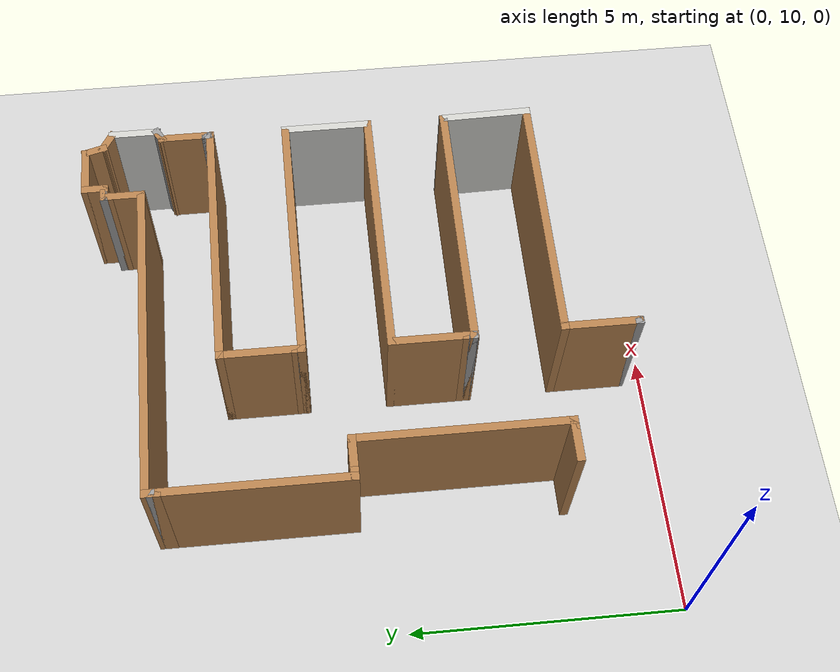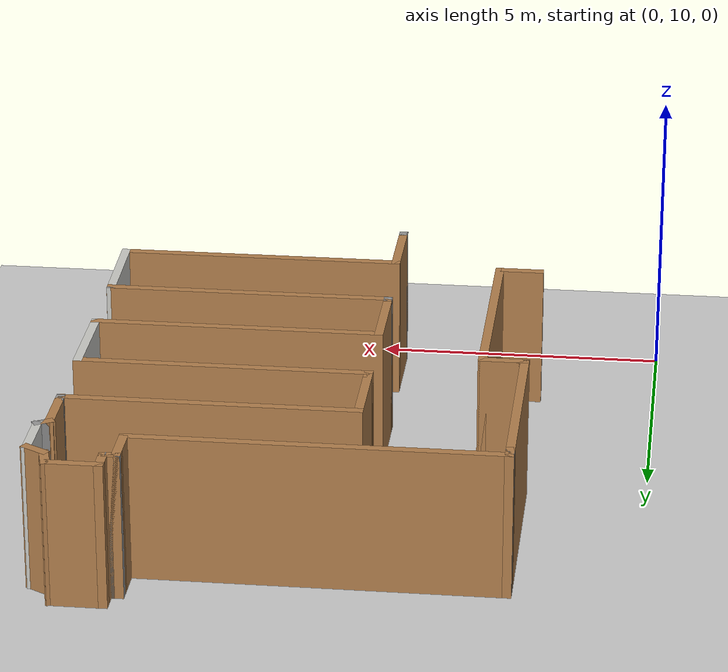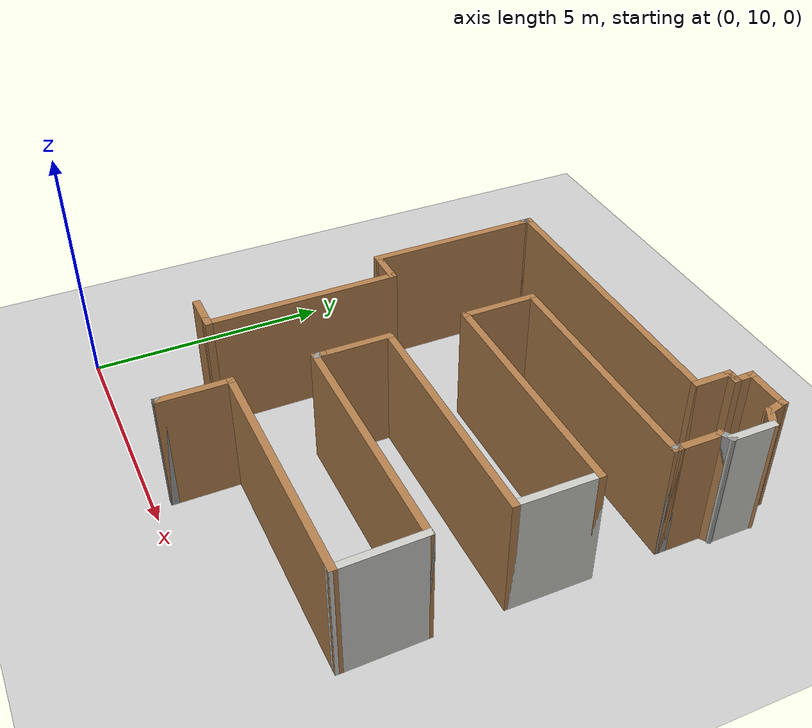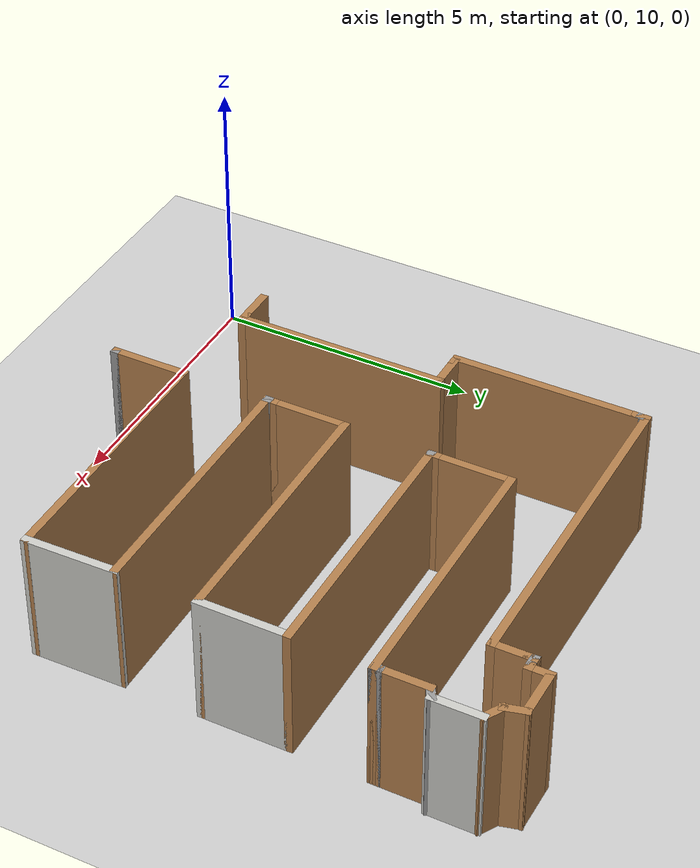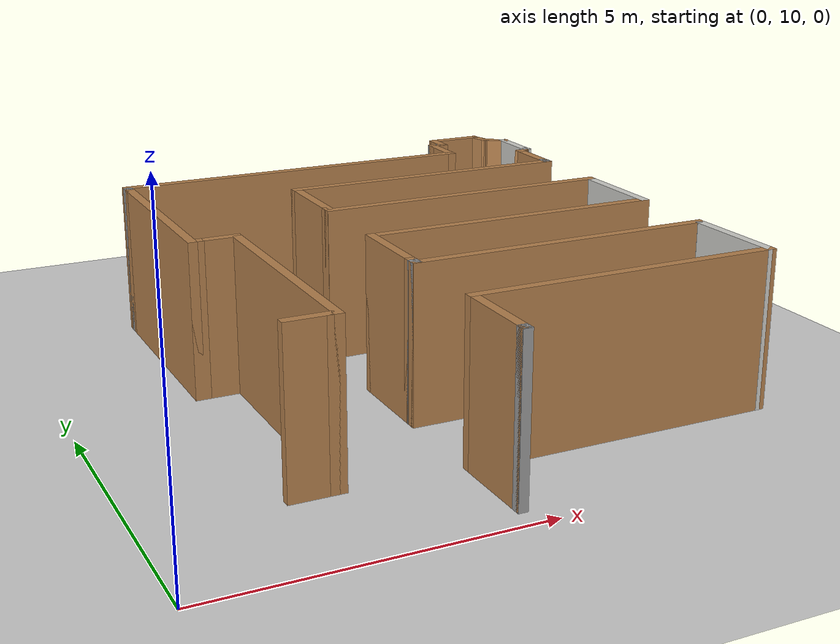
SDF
<sdf version="1.6">
 <world name="default">
  <model name="ground_plane">
   <static>1</static>
   <link name="link">
    <collision name="collision">
     <geometry><plane><normal>0 0 1</normal><size>100 100</size></plane></geometry>
     <surface>
      <contact><collide_bitmask>65535</collide_bitmask></contact>
      <friction><ode><mu>100</mu><mu2>50</mu2></ode></friction>
     </surface>
    </collision>
    <visual name="visual">
     <cast_shadows>0</cast_shadows>
     <geometry><plane><normal>0 0 1</normal><size>100 100</size></plane></geometry>
     <material>
      <script><uri>file://media/materials/scripts/gazebo.material</uri><name>Gazebo/Grey</name></script>
     </material>
    </visual>
   </link>
  </model>
  <model name="ecst_lab_v2">
   <pose>2.38151 7.60504 0 0 0 -1.5708</pose>
   <link name="Wall_1">
    <collision name="Wall_1_Collision">
     <geometry><box><size>5 0.15 2.5</size></box></geometry>
     <pose>0 0 1.25 0 -0 0</pose>
    </collision>
    <visual name="Wall_1_Visual">
     <pose>0 0 1.25 0 -0 0</pose>
     <geometry><box><size>5 0.15 2.5</size></box></geometry>
     <material>
      <script><uri>file://media/materials/scripts/gazebo.material</uri><name>Gazebo/Wood</name></script>
      <ambient>1 1 1 1</ambient>
     </material>
     <meta><layer>0</layer></meta>
    </visual>
    <pose>-4.16301 4.67727 0 0 -0 -1.5708</pose>
   </link>
   <link name="Wall_100">
    <collision name="Wall_100_Collision">
     <geometry><box><size>1 0.15 2.5</size></box></geometry>
     <pose>0 0 1.25 0 -0 0</pose>
    </collision>
    <visual name="Wall_100_Visual">
     <pose>0 0 1.25 0 -0 0</pose>
     <geometry><box><size>1 0.15 2.5</size></box></geometry>
     <material>
      <script><uri>file://media/materials/scripts/gazebo.material</uri><name>Gazebo/Wood</name></script>
      <ambient>1 1 1 1</ambient>
     </material>
     <meta><layer>0</layer></meta>
    </visual>
    <pose>-10.8485 7.06822 0 0 -0 0</pose>
   </link>
   <link name="Wall_101">
    <collision name="Wall_101_Collision">
     <geometry><box><size>0.15 0.15 2.5</size></box></geometry>
     <pose>0 0 1.25 0 -0 0</pose>
    </collision>
    <visual name="Wall_101_Visual">
     <pose>0 0 1.25 0 -0 0</pose>
     <geometry><box><size>0.15 0.15 2.5</size></box></geometry>
     <material>
      <script><uri>file://media/materials/scripts/gazebo.material</uri><name>Gazebo/Grey</name></script>
      <ambient>1 1 1 1</ambient>
     </material>
     <meta><layer>0</layer></meta>
    </visual>
    <pose>-10.4235 7.06822 0 0 -0 0</pose>
   </link>
   <link name="Wall_102">
    <collision name="Wall_102_Collision">
     <geometry><box><size>0.16 0.15 2.5</size></box></geometry>
     <pose>0 0 1.25 0 -0 0</pose>
    </collision>
    <visual name="Wall_102_Visual">
     <pose>0 0 1.25 0 -0 0</pose>
     <geometry><box><size>0.16 0.15 2.5</size></box></geometry>
     <material>
      <script><uri>file://media/materials/scripts/gazebo.material</uri><name>Gazebo/Grey</name></script>
      <ambient>1 1 1 1</ambient>
     </material>
     <meta><layer>0</layer></meta>
    </visual>
    <pose>-10.4185 7.06822 0 0 -0 0</pose>
   </link>
   <link name="Wall_103">
    <collision name="Wall_103_Collision">
     <geometry><box><size>0.16 0.15 2.5</size></box></geometry>
     <pose>0 0 1.25 0 -0 0</pose>
    </collision>
    <visual name="Wall_103_Visual">
     <pose>0 0 1.25 0 -0 0</pose>
     <geometry><box><size>0.16 0.15 2.5</size></box></geometry>
     <material>
      <script><uri>file://media/materials/scripts/gazebo.material</uri><name>Gazebo/Grey</name></script>
      <ambient>1 1 1 1</ambient>
     </material>
     <meta><layer>0</layer></meta>
    </visual>
    <pose>-10.4085 7.06822 0 0 -0 0</pose>
   </link>
   <link name="Wall_104">
    <collision name="Wall_104_Collision">
     <geometry><box><size>0.16 0.15 2.5</size></box></geometry>
     <pose>0 0 1.25 0 -0 0</pose>
    </collision>
    <visual name="Wall_104_Visual">
     <pose>0 0 1.25 0 -0 0</pose>
     <geometry><box><size>0.16 0.15 2.5</size></box></geometry>
     <material>
      <script><uri>file://media/materials/scripts/gazebo.material</uri><name>Gazebo/Wood</name></script>
      <ambient>1 1 1 1</ambient>
     </material>
     <meta><layer>0</layer></meta>
    </visual>
    <pose>-10.3985 7.06822 0 0 -0 0</pose>
   </link>
   <link name="Wall_105">
    <collision name="Wall_105_Collision">
     <geometry><box><size>0.16 0.15 2.5</size></box></geometry>
     <pose>0 0 1.25 0 -0 0</pose>
    </collision>
    <visual name="Wall_105_Visual">
     <pose>0 0 1.25 0 -0 0</pose>
     <geometry><box><size>0.16 0.15 2.5</size></box></geometry>
     <material>
      <script><uri>file://media/materials/scripts/gazebo.material</uri><name>Gazebo/Grey</name></script>
      <ambient>1 1 1 1</ambient>
     </material>
     <meta><layer>0</layer></meta>
    </visual>
    <pose>-10.3885 7.06822 0 0 -0 0</pose>
   </link>
   <link name="Wall_106">
    <collision name="Wall_106_Collision">
     <geometry><box><size>0.16 0.15 2.5</size></box></geometry>
     <pose>0 0 1.25 0 -0 0</pose>
    </collision>
    <visual name="Wall_106_Visual">
     <pose>0 0 1.25 0 -0 0</pose>
     <geometry><box><size>0.16 0.15 2.5</size></box></geometry>
     <material>
      <script><uri>file://media/materials/scripts/gazebo.material</uri><name>Gazebo/Wood</name></script>
      <ambient>1 1 1 1</ambient>
     </material>
     <meta><layer>0</layer></meta>
    </visual>
    <pose>-10.3785 7.06822 0 0 -0 0</pose>
   </link>
   <link name="Wall_107">
    <collision name="Wall_107_Collision">
     <geometry><box><size>0.16 0.15 2.5</size></box></geometry>
     <pose>0 0 1.25 0 -0 0</pose>
    </collision>
    <visual name="Wall_107_Visual">
     <pose>0 0 1.25 0 -0 0</pose>
     <geometry><box><size>0.16 0.15 2.5</size></box></geometry>
     <material>
      <script><uri>file://media/materials/scripts/gazebo.material</uri><name>Gazebo/Grey</name></script>
      <ambient>1 1 1 1</ambient>
     </material>
     <meta><layer>0</layer></meta>
    </visual>
    <pose>-10.3685 7.06822 0 0 -0 0</pose>
   </link>
   <link name="Wall_108">
    <collision name="Wall_108_Collision">
     <geometry><box><size>0.16 0.15 2.5</size></box></geometry>
     <pose>0 0 1.25 0 -0 0</pose>
    </collision>
    <visual name="Wall_108_Visual">
     <pose>0 0 1.25 0 -0 0</pose>
     <geometry><box><size>0.16 0.15 2.5</size></box></geometry>
     <material>
      <script><uri>file://media/materials/scripts/gazebo.material</uri><name>Gazebo/Grey</name></script>
      <ambient>1 1 1 1</ambient>
     </material>
     <meta><layer>0</layer></meta>
    </visual>
    <pose>-10.3685 7.06822 0 0 -0 3.14159</pose>
   </link>
   <link name="Wall_109">
    <collision name="Wall_109_Collision">
     <geometry><box><size>0.16 0.15 2.5</size></box></geometry>
     <pose>0 0 1.25 0 -0 0</pose>
    </collision>
    <visual name="Wall_109_Visual">
     <pose>0 0 1.25 0 -0 0</pose>
     <geometry><box><size>0.16 0.15 2.5</size></box></geometry>
     <material>
      <script><uri>file://media/materials/scripts/gazebo.material</uri><name>Gazebo/Grey</name></script>
      <ambient>1 1 1 1</ambient>
     </material>
     <meta><layer>0</layer></meta>
    </visual>
    <pose>-10.3685 7.06822 0 0 -0 0</pose>
   </link>
   <link name="Wall_110">
    <collision name="Wall_110_Collision">
     <geometry><box><size>0.16 0.15 2.5</size></box></geometry>
     <pose>0 0 1.25 0 -0 0</pose>
    </collision>
    <visual name="Wall_110_Visual">
     <pose>0 0 1.25 0 -0 0</pose>
     <geometry><box><size>0.16 0.15 2.5</size></box></geometry>
     <material>
      <script><uri>file://media/materials/scripts/gazebo.material</uri><name>Gazebo/Grey</name></script>
      <ambient>1 1 1 1</ambient>
     </material>
     <meta><layer>0</layer></meta>
    </visual>
    <pose>-10.3685 7.06822 0 0 -0 3.14159</pose>
   </link>
   <link name="Wall_111">
    <collision name="Wall_111_Collision">
     <geometry><box><size>0.16 0.15 2.5</size></box></geometry>
     <pose>0 0 1.25 0 -0 0</pose>
    </collision>
    <visual name="Wall_111_Visual">
     <pose>0 0 1.25 0 -0 0</pose>
     <geometry><box><size>0.16 0.15 2.5</size></box></geometry>
     <material>
      <script><uri>file://media/materials/scripts/gazebo.material</uri><name>Gazebo/Grey</name></script>
      <ambient>1 1 1 1</ambient>
     </material>
     <meta><layer>0</layer></meta>
    </visual>
    <pose>-10.3685 7.06822 0 0 -0 0</pose>
   </link>
   <link name="Wall_112">
    <collision name="Wall_112_Collision">
     <geometry><box><size>0.16 0.15 2.5</size></box></geometry>
     <pose>0 0 1.25 0 -0 0</pose>
    </collision>
    <visual name="Wall_112_Visual">
     <pose>0 0 1.25 0 -0 0</pose>
     <geometry><box><size>0.16 0.15 2.5</size></box></geometry>
     <material>
      <script><uri>file://media/materials/scripts/gazebo.material</uri><name>Gazebo/Grey</name></script>
      <ambient>1 1 1 1</ambient>
     </material>
     <meta><layer>0</layer></meta>
    </visual>
    <pose>-10.3685 7.06822 0 0 -0 3.14159</pose>
   </link>
   <link name="Wall_113">
    <collision name="Wall_113_Collision">
     <geometry><box><size>0.16 0.15 2.5</size></box></geometry>
     <pose>0 0 1.25 0 -0 0</pose>
    </collision>
    <visual name="Wall_113_Visual">
     <pose>0 0 1.25 0 -0 0</pose>
     <geometry><box><size>0.16 0.15 2.5</size></box></geometry>
     <material>
      <script><uri>file://media/materials/scripts/gazebo.material</uri><name>Gazebo/Grey</name></script>
      <ambient>1 1 1 1</ambient>
     </material>
     <meta><layer>0</layer></meta>
    </visual>
    <pose>-10.3685 7.06822 0 0 -0 0</pose>
   </link>
   <link name="Wall_114">
    <collision name="Wall_114_Collision">
     <geometry><box><size>0.16 0.15 2.5</size></box></geometry>
     <pose>0 0 1.25 0 -0 0</pose>
    </collision>
    <visual name="Wall_114_Visual">
     <pose>0 0 1.25 0 -0 0</pose>
     <geometry><box><size>0.16 0.15 2.5</size></box></geometry>
     <material>
      <script><uri>file://media/materials/scripts/gazebo.material</uri><name>Gazebo/Grey</name></script>
      <ambient>1 1 1 1</ambient>
     </material>
     <meta><layer>0</layer></meta>
    </visual>
    <pose>-10.3685 7.06822 0 0 -0 3.14159</pose>
   </link>
   <link name="Wall_115">
    <collision name="Wall_115_Collision">
     <geometry><box><size>0.16 0.15 2.5</size></box></geometry>
     <pose>0 0 1.25 0 -0 0</pose>
    </collision>
    <visual name="Wall_115_Visual">
     <pose>0 0 1.25 0 -0 0</pose>
     <geometry><box><size>0.16 0.15 2.5</size></box></geometry>
     <material>
      <script><uri>file://media/materials/scripts/gazebo.material</uri><name>Gazebo/Wood</name></script>
      <ambient>1 1 1 1</ambient>
     </material>
     <meta><layer>0</layer></meta>
    </visual>
    <pose>-10.3685 7.06822 0 0 -0 0</pose>
   </link>
   <link name="Wall_116">
    <collision name="Wall_116_Collision">
     <geometry><box><size>0.16 0.15 2.5</size></box></geometry>
     <pose>0 0 1.25 0 -0 0</pose>
    </collision>
    <visual name="Wall_116_Visual">
     <pose>0 0 1.25 0 -0 0</pose>
     <geometry><box><size>0.16 0.15 2.5</size></box></geometry>
     <material>
      <script><uri>file://media/materials/scripts/gazebo.material</uri><name>Gazebo/Grey</name></script>
      <ambient>1 1 1 1</ambient>
     </material>
     <meta><layer>0</layer></meta>
    </visual>
    <pose>-10.3585 7.06822 0 0 -0 0</pose>
   </link>
   <link name="Wall_117">
    <collision name="Wall_117_Collision">
     <geometry><box><size>0.16 0.15 2.5</size></box></geometry>
     <pose>0 0 1.25 0 -0 0</pose>
    </collision>
    <visual name="Wall_117_Visual">
     <pose>0 0 1.25 0 -0 0</pose>
     <geometry><box><size>0.16 0.15 2.5</size></box></geometry>
     <material>
      <script><uri>file://media/materials/scripts/gazebo.material</uri><name>Gazebo/Wood</name></script>
      <ambient>1 1 1 1</ambient>
     </material>
     <meta><layer>0</layer></meta>
    </visual>
    <pose>-10.3485 7.06822 0 0 -0 0</pose>
   </link>
   <link name="Wall_118">
    <collision name="Wall_118_Collision">
     <geometry><box><size>5 0.15 2.5</size></box></geometry>
     <pose>0 0 1.25 0 -0 0</pose>
    </collision>
    <visual name="Wall_118_Visual">
     <pose>0 0 1.25 0 -0 0</pose>
     <geometry><box><size>5 0.15 2.5</size></box></geometry>
     <material>
      <script><uri>file://media/materials/scripts/gazebo.material</uri><name>Gazebo/Wood</name></script>
      <ambient>1 1 1 1</ambient>
     </material>
     <meta><layer>0</layer></meta>
    </visual>
    <pose>-10.3435 4.64322 0 0 -0 -1.5708</pose>
   </link>
   <link name="Wall_119">
    <collision name="Wall_119_Collision">
     <geometry><box><size>1.5 0.15 2.5</size></box></geometry>
     <pose>0 0 1.25 0 -0 0</pose>
    </collision>
    <visual name="Wall_119_Visual">
     <pose>0 0 1.25 0 -0 0</pose>
     <geometry><box><size>1.5 0.15 2.5</size></box></geometry>
     <material>
      <script><uri>file://media/materials/scripts/gazebo.material</uri><name>Gazebo/Wood</name></script>
      <ambient>1 1 1 1</ambient>
     </material>
     <meta><layer>0</layer></meta>
    </visual>
    <pose>-9.6685 2.21822 0 0 -0 0</pose>
   </link>
   <link name="Wall_120">
    <collision name="Wall_120_Collision">
     <geometry><box><size>0.25 0.15 2.5</size></box></geometry>
     <pose>0 0 1.25 0 -0 0</pose>
    </collision>
    <visual name="Wall_120_Visual">
     <pose>0 0 1.25 0 -0 0</pose>
     <geometry><box><size>0.25 0.15 2.5</size></box></geometry>
     <material>
      <script><uri>file://media/materials/scripts/gazebo.material</uri><name>Gazebo/Wood</name></script>
      <ambient>1 1 1 1</ambient>
     </material>
     <meta><layer>0</layer></meta>
    </visual>
    <pose>-8.9435 2.21822 0 0 -0 0</pose>
   </link>
   <link name="Wall_121">
    <collision name="Wall_121_Collision">
     <geometry><box><size>0.15 0.15 2.5</size></box></geometry>
     <pose>0 0 1.25 0 -0 0</pose>
    </collision>
    <visual name="Wall_121_Visual">
     <pose>0 0 1.25 0 -0 0</pose>
     <geometry><box><size>0.15 0.15 2.5</size></box></geometry>
     <material>
      <script><uri>file://media/materials/scripts/gazebo.material</uri><name>Gazebo/Grey</name></script>
      <ambient>1 1 1 1</ambient>
     </material>
     <meta><layer>0</layer></meta>
    </visual>
    <pose>-8.8935 2.21822 0 0 -0 0</pose>
   </link>
   <link name="Wall_122">
    <collision name="Wall_122_Collision">
     <geometry><box><size>0.16 0.15 2.5</size></box></geometry>
     <pose>0 0 1.25 0 -0 0</pose>
    </collision>
    <visual name="Wall_122_Visual">
     <pose>0 0 1.25 0 -0 0</pose>
     <geometry><box><size>0.16 0.15 2.5</size></box></geometry>
     <material>
      <script><uri>file://media/materials/scripts/gazebo.material</uri><name>Gazebo/Wood</name></script>
      <ambient>1 1 1 1</ambient>
     </material>
     <meta><layer>0</layer></meta>
    </visual>
    <pose>-8.8885 2.21822 0 0 -0 0</pose>
   </link>
   <link name="Wall_123">
    <collision name="Wall_123_Collision">
     <geometry><box><size>5 0.15 2.5</size></box></geometry>
     <pose>0 0 1.25 0 -0 0</pose>
    </collision>
    <visual name="Wall_123_Visual">
     <pose>0 0 1.25 0 -0 0</pose>
     <geometry><box><size>5 0.15 2.5</size></box></geometry>
     <material>
      <script><uri>file://media/materials/scripts/gazebo.material</uri><name>Gazebo/Wood</name></script>
      <ambient>1 1 1 1</ambient>
     </material>
     <meta><layer>0</layer></meta>
    </visual>
    <pose>-8.8835 4.64322 0 0 -0 1.5708</pose>
   </link>
   <link name="Wall_124">
    <collision name="Wall_124_Collision">
     <geometry><box><size>1.75 0.15 2.5</size></box></geometry>
     <pose>0 0 1.25 0 -0 0</pose>
    </collision>
    <visual name="Wall_124_Visual">
     <pose>0 0 1.25 0 -0 0</pose>
     <geometry><box><size>1.75 0.15 2.5</size></box></geometry>
     <material>
      <script><uri>file://media/materials/scripts/gazebo.material</uri><name>Gazebo/CeilingTiled</name></script>
      <ambient>1 1 1 1</ambient>
     </material>
     <meta><layer>0</layer></meta>
    </visual>
    <pose>-8.0835 7.06822 0 0 -0 0</pose>
   </link>
   <link name="Wall_125">
    <collision name="Wall_125_Collision">
     <geometry><box><size>5 0.15 2.5</size></box></geometry>
     <pose>0 0 1.25 0 -0 0</pose>
    </collision>
    <visual name="Wall_125_Visual">
     <pose>0 0 1.25 0 -0 0</pose>
     <geometry><box><size>5 0.15 2.5</size></box></geometry>
     <material>
      <script><uri>file://media/materials/scripts/gazebo.material</uri><name>Gazebo/Wood</name></script>
      <ambient>1 1 1 1</ambient>
     </material>
     <meta><layer>0</layer></meta>
    </visual>
    <pose>-7.2835 4.64322 0 0 -0 -1.5708</pose>
   </link>
   <link name="Wall_126">
    <collision name="Wall_126_Collision">
     <geometry><box><size>1.5 0.15 2.5</size></box></geometry>
     <pose>0 0 1.25 0 -0 0</pose>
    </collision>
    <visual name="Wall_126_Visual">
     <pose>0 0 1.25 0 -0 0</pose>
     <geometry><box><size>1.5 0.15 2.5</size></box></geometry>
     <material>
      <script><uri>file://media/materials/scripts/gazebo.material</uri><name>Gazebo/Wood</name></script>
      <ambient>1 1 1 1</ambient>
     </material>
     <meta><layer>0</layer></meta>
    </visual>
    <pose>-6.6085 2.21822 0 0 -0 0</pose>
   </link>
   <link name="Wall_127">
    <collision name="Wall_127_Collision">
     <geometry><box><size>0.25 0.15 2.5</size></box></geometry>
     <pose>0 0 1.25 0 -0 0</pose>
    </collision>
    <visual name="Wall_127_Visual">
     <pose>0 0 1.25 0 -0 0</pose>
     <geometry><box><size>0.25 0.15 2.5</size></box></geometry>
     <material>
      <script><uri>file://media/materials/scripts/gazebo.material</uri><name>Gazebo/Wood</name></script>
      <ambient>1 1 1 1</ambient>
     </material>
     <meta><layer>0</layer></meta>
    </visual>
    <pose>-5.8835 2.21822 0 0 -0 0</pose>
   </link>
   <link name="Wall_128">
    <collision name="Wall_128_Collision">
     <geometry><box><size>0.15 0.15 2.5</size></box></geometry>
     <pose>0 0 1.25 0 -0 0</pose>
    </collision>
    <visual name="Wall_128_Visual">
     <pose>0 0 1.25 0 -0 0</pose>
     <geometry><box><size>0.15 0.15 2.5</size></box></geometry>
     <material>
      <script><uri>file://media/materials/scripts/gazebo.material</uri><name>Gazebo/Grey</name></script>
      <ambient>1 1 1 1</ambient>
     </material>
     <meta><layer>0</layer></meta>
    </visual>
    <pose>-5.8335 2.21822 0 0 -0 0</pose>
   </link>
   <link name="Wall_129">
    <collision name="Wall_129_Collision">
     <geometry><box><size>0.16 0.15 2.5</size></box></geometry>
     <pose>0 0 1.25 0 -0 0</pose>
    </collision>
    <visual name="Wall_129_Visual">
     <pose>0 0 1.25 0 -0 0</pose>
     <geometry><box><size>0.16 0.15 2.5</size></box></geometry>
     <material>
      <script><uri>file://media/materials/scripts/gazebo.material</uri><name>Gazebo/Wood</name></script>
      <ambient>1 1 1 1</ambient>
     </material>
     <meta><layer>0</layer></meta>
    </visual>
    <pose>-5.8285 2.21822 0 0 -0 0</pose>
   </link>
   <link name="Wall_130">
    <collision name="Wall_130_Collision">
     <geometry><box><size>0.16 0.15 2.5</size></box></geometry>
     <pose>0 0 1.25 0 -0 0</pose>
    </collision>
    <visual name="Wall_130_Visual">
     <pose>0 0 1.25 0 -0 0</pose>
     <geometry><box><size>0.16 0.15 2.5</size></box></geometry>
     <material>
      <script><uri>file://media/materials/scripts/gazebo.material</uri><name>Gazebo/Grey</name></script>
      <ambient>1 1 1 1</ambient>
     </material>
     <meta><layer>0</layer></meta>
    </visual>
    <pose>-5.8185 2.21822 0 0 -0 0</pose>
   </link>
   <link name="Wall_131">
    <collision name="Wall_131_Collision">
     <geometry><box><size>0.16 0.15 2.5</size></box></geometry>
     <pose>0 0 1.25 0 -0 0</pose>
    </collision>
    <visual name="Wall_131_Visual">
     <pose>0 0 1.25 0 -0 0</pose>
     <geometry><box><size>0.16 0.15 2.5</size></box></geometry>
     <material>
      <script><uri>file://media/materials/scripts/gazebo.material</uri><name>Gazebo/Grey</name></script>
      <ambient>1 1 1 1</ambient>
     </material>
     <meta><layer>0</layer></meta>
    </visual>
    <pose>-5.8085 2.21822 0 0 -0 0</pose>
   </link>
   <link name="Wall_132">
    <collision name="Wall_132_Collision">
     <geometry><box><size>0.16 0.15 2.5</size></box></geometry>
     <pose>0 0 1.25 0 -0 0</pose>
    </collision>
    <visual name="Wall_132_Visual">
     <pose>0 0 1.25 0 -0 0</pose>
     <geometry><box><size>0.16 0.15 2.5</size></box></geometry>
     <material>
      <script><uri>file://media/materials/scripts/gazebo.material</uri><name>Gazebo/Wood</name></script>
      <ambient>1 1 1 1</ambient>
     </material>
     <meta><layer>0</layer></meta>
    </visual>
    <pose>-5.7985 2.21822 0 0 -0 0</pose>
   </link>
   <link name="Wall_133">
    <collision name="Wall_133_Collision">
     <geometry><box><size>5 0.15 2.5</size></box></geometry>
     <pose>0 0 1.25 0 -0 0</pose>
    </collision>
    <visual name="Wall_133_Visual">
     <pose>0 0 1.25 0 -0 0</pose>
     <geometry><box><size>5 0.15 2.5</size></box></geometry>
     <material>
      <script><uri>file://media/materials/scripts/gazebo.material</uri><name>Gazebo/Wood</name></script>
      <ambient>1 1 1 1</ambient>
     </material>
     <meta><layer>0</layer></meta>
    </visual>
    <pose>-5.7935 4.64322 0 0 -0 1.5708</pose>
   </link>
   <link name="Wall_134">
    <collision name="Wall_134_Collision">
     <geometry><box><size>0.15 0.15 2.5</size></box></geometry>
     <pose>0 0 1.25 0 -0 0</pose>
    </collision>
    <visual name="Wall_134_Visual">
     <pose>0 0 1.25 0 -0 0</pose>
     <geometry><box><size>0.15 0.15 2.5</size></box></geometry>
     <material>
      <script><uri>file://media/materials/scripts/gazebo.material</uri><name>Gazebo/Grey</name></script>
      <ambient>1 1 1 1</ambient>
     </material>
     <meta><layer>0</layer></meta>
    </visual>
    <pose>-5.7935 7.06822 0 0 -0 0</pose>
   </link>
   <link name="Wall_135">
    <collision name="Wall_135_Collision">
     <geometry><box><size>0.15 0.15 2.5</size></box></geometry>
     <pose>0 0 1.25 0 -0 0</pose>
    </collision>
    <visual name="Wall_135_Visual">
     <pose>0 0 1.25 0 -0 0</pose>
     <geometry><box><size>0.15 0.15 2.5</size></box></geometry>
     <material>
      <script><uri>file://media/materials/scripts/gazebo.material</uri><name>Gazebo/Grey</name></script>
      <ambient>1 1 1 1</ambient>
     </material>
     <meta><layer>0</layer></meta>
    </visual>
    <pose>-5.7935 7.06822 0 0 -0 0</pose>
   </link>
   <link name="Wall_136">
    <collision name="Wall_136_Collision">
     <geometry><box><size>0.15 0.15 2.5</size></box></geometry>
     <pose>0 0 1.25 0 -0 0</pose>
    </collision>
    <visual name="Wall_136_Visual">
     <pose>0 0 1.25 0 -0 0</pose>
     <geometry><box><size>0.15 0.15 2.5</size></box></geometry>
     <material>
      <script><uri>file://media/materials/scripts/gazebo.material</uri><name>Gazebo/Grey</name></script>
      <ambient>1 1 1 1</ambient>
     </material>
     <meta><layer>0</layer></meta>
    </visual>
    <pose>-5.7935 7.06822 0 0 -0 0</pose>
   </link>
   <link name="Wall_137">
    <collision name="Wall_137_Collision">
     <geometry><box><size>0.15 0.15 2.5</size></box></geometry>
     <pose>0 0 1.25 0 -0 0</pose>
    </collision>
    <visual name="Wall_137_Visual">
     <pose>0 0 1.25 0 -0 0</pose>
     <geometry><box><size>0.15 0.15 2.5</size></box></geometry>
     <material>
      <script><uri>file://media/materials/scripts/gazebo.material</uri><name>Gazebo/Grey</name></script>
      <ambient>1 1 1 1</ambient>
     </material>
     <meta><layer>0</layer></meta>
    </visual>
    <pose>-5.7935 7.06822 0 0 -0 0</pose>
   </link>
   <link name="Wall_138">
    <collision name="Wall_138_Collision">
     <geometry><box><size>1.78084 0.15 2.5</size></box></geometry>
     <pose>0 0 1.25 0 -0 0</pose>
    </collision>
    <visual name="Wall_138_Visual">
     <pose>0 0 1.25 0 -0 0</pose>
     <geometry><box><size>1.78084 0.15 2.5</size></box></geometry>
     <material>
      <script><uri>file://media/materials/scripts/gazebo.material</uri><name>Gazebo/CeilingTiled</name></script>
      <ambient>1 1 1 1</ambient>
     </material>
     <meta><layer>0</layer></meta>
    </visual>
    <pose>-4.97826 7.08524 0 0 -0 0.020886</pose>
   </link>
   <link name="Wall_2">
    <collision name="Wall_2_Collision">
     <geometry><box><size>1.5 0.15 2.5</size></box></geometry>
     <pose>0 0 1.25 0 -0 0</pose>
    </collision>
    <visual name="Wall_2_Visual">
     <pose>0 0 1.25 0 -0 0</pose>
     <geometry><box><size>1.5 0.15 2.5</size></box></geometry>
     <material>
      <script><uri>file://media/materials/scripts/gazebo.material</uri><name>Gazebo/Wood</name></script>
      <ambient>1 1 1 1</ambient>
     </material>
     <meta><layer>0</layer></meta>
    </visual>
    <pose>-3.48801 2.25228 0 0 -0 0</pose>
   </link>
   <link name="Wall_3">
    <collision name="Wall_3_Collision">
     <geometry><box><size>0.15 0.15 2.5</size></box></geometry>
     <pose>0 0 1.25 0 -0 0</pose>
    </collision>
    <visual name="Wall_3_Visual">
     <pose>0 0 1.25 0 -0 0</pose>
     <geometry><box><size>0.15 0.15 2.5</size></box></geometry>
     <material>
      <script><uri>file://media/materials/scripts/gazebo.material</uri><name>Gazebo/Grey</name></script>
      <ambient>1 1 1 1</ambient>
     </material>
     <meta><layer>0</layer></meta>
    </visual>
    <pose>-2.81301 2.25228 0 0 -0 0</pose>
   </link>
   <link name="Wall_4">
    <collision name="Wall_4_Collision">
     <geometry><box><size>0.15 0.15 2.5</size></box></geometry>
     <pose>0 0 1.25 0 -0 0</pose>
    </collision>
    <visual name="Wall_4_Visual">
     <pose>0 0 1.25 0 -0 0</pose>
     <geometry><box><size>0.15 0.15 2.5</size></box></geometry>
     <material>
      <script><uri>file://media/materials/scripts/gazebo.material</uri><name>Gazebo/Grey</name></script>
      <ambient>1 1 1 1</ambient>
     </material>
     <meta><layer>0</layer></meta>
    </visual>
    <pose>-2.81301 2.25228 0 0 -0 0</pose>
   </link>
   <link name="Wall_5">
    <collision name="Wall_5_Collision">
     <geometry><box><size>0.16 0.15 2.5</size></box></geometry>
     <pose>0 0 1.25 0 -0 0</pose>
    </collision>
    <visual name="Wall_5_Visual">
     <pose>0 0 1.25 0 -0 0</pose>
     <geometry><box><size>0.16 0.15 2.5</size></box></geometry>
     <material>
      <script><uri>file://media/materials/scripts/gazebo.material</uri><name>Gazebo/Grey</name></script>
      <ambient>1 1 1 1</ambient>
     </material>
     <meta><layer>0</layer></meta>
    </visual>
    <pose>-2.80801 2.25228 0 0 -0 0</pose>
   </link>
   <link name="Wall_76">
    <collision name="Wall_76_Collision">
     <geometry><box><size>0.75 0.15 2.5</size></box></geometry>
     <pose>0 0 1.25 0 -0 0</pose>
    </collision>
    <visual name="Wall_76_Visual">
     <pose>0 0 1.25 0 -0 0</pose>
     <geometry><box><size>0.75 0.15 2.5</size></box></geometry>
     <material>
      <script><uri>file://media/materials/scripts/gazebo.material</uri><name>Gazebo/Wood</name></script>
      <ambient>1 1 1 1</ambient>
     </material>
     <meta><layer>0</layer></meta>
    </visual>
    <pose>-4.29657 -0.002274 0 0 -0 1.5708</pose>
   </link>
   <link name="Wall_77">
    <collision name="Wall_77_Collision">
     <geometry><box><size>0.25 0.15 2.5</size></box></geometry>
     <pose>0 0 1.25 0 -0 0</pose>
    </collision>
    <visual name="Wall_77_Visual">
     <pose>0 0 1.25 0 -0 0</pose>
     <geometry><box><size>0.25 0.15 2.5</size></box></geometry>
     <material>
      <script><uri>file://media/materials/scripts/gazebo.material</uri><name>Gazebo/Wood</name></script>
      <ambient>1 1 1 1</ambient>
     </material>
     <meta><layer>0</layer></meta>
    </visual>
    <pose>-4.29657 0.347726 0 0 -0 1.5708</pose>
   </link>
   <link name="Wall_78">
    <collision name="Wall_78_Collision">
     <geometry><box><size>4 0.15 2.5</size></box></geometry>
     <pose>0 0 1.25 0 -0 0</pose>
    </collision>
    <visual name="Wall_78_Visual">
     <pose>0 0 1.25 0 -0 0</pose>
     <geometry><box><size>4 0.15 2.5</size></box></geometry>
     <material>
      <script><uri>file://media/materials/scripts/gazebo.material</uri><name>Gazebo/Wood</name></script>
      <ambient>1 1 1 1</ambient>
     </material>
     <meta><layer>0</layer></meta>
    </visual>
    <pose>-6.22157 0.397726 0 0 -0 3.14159</pose>
   </link>
   <link name="Wall_79">
    <collision name="Wall_79_Collision">
     <geometry><box><size>0.75 0.15 2.5</size></box></geometry>
     <pose>0 0 1.25 0 -0 0</pose>
    </collision>
    <visual name="Wall_79_Visual">
     <pose>0 0 1.25 0 -0 0</pose>
     <geometry><box><size>0.75 0.15 2.5</size></box></geometry>
     <material>
      <script><uri>file://media/materials/scripts/gazebo.material</uri><name>Gazebo/Wood</name></script>
      <ambient>1 1 1 1</ambient>
     </material>
     <meta><layer>0</layer></meta>
    </visual>
    <pose>-8.14657 0.097726 0 0 -0 -1.5708</pose>
   </link>
   <link name="Wall_80">
    <collision name="Wall_80_Collision">
     <geometry><box><size>0.25 0.15 2.5</size></box></geometry>
     <pose>0 0 1.25 0 -0 0</pose>
    </collision>
    <visual name="Wall_80_Visual">
     <pose>0 0 1.25 0 -0 0</pose>
     <geometry><box><size>0.25 0.15 2.5</size></box></geometry>
     <material>
      <script><uri>file://media/materials/scripts/gazebo.material</uri><name>Gazebo/Wood</name></script>
      <ambient>1 1 1 1</ambient>
     </material>
     <meta><layer>0</layer></meta>
    </visual>
    <pose>-8.14657 -0.252274 0 0 -0 -1.5708</pose>
   </link>
   <link name="Wall_81">
    <collision name="Wall_81_Collision">
     <geometry><box><size>3.5 0.15 2.5</size></box></geometry>
     <pose>0 0 1.25 0 -0 0</pose>
    </collision>
    <visual name="Wall_81_Visual">
     <pose>0 0 1.25 0 -0 0</pose>
     <geometry><box><size>3.5 0.15 2.5</size></box></geometry>
     <material>
      <script><uri>file://media/materials/scripts/gazebo.material</uri><name>Gazebo/Wood</name></script>
      <ambient>1 1 1 1</ambient>
     </material>
     <meta><layer>0</layer></meta>
    </visual>
    <pose>-9.82157 -0.302274 0 0 -0 3.14159</pose>
   </link>
   <link name="Wall_82">
    <collision name="Wall_82_Collision">
     <geometry><box><size>0.25 0.15 2.5</size></box></geometry>
     <pose>0 0 1.25 0 -0 0</pose>
    </collision>
    <visual name="Wall_82_Visual">
     <pose>0 0 1.25 0 -0 0</pose>
     <geometry><box><size>0.25 0.15 2.5</size></box></geometry>
     <material>
      <script><uri>file://media/materials/scripts/gazebo.material</uri><name>Gazebo/Wood</name></script>
      <ambient>1 1 1 1</ambient>
     </material>
     <meta><layer>0</layer></meta>
    </visual>
    <pose>-11.5466 -0.302274 0 0 -0 3.14159</pose>
   </link>
   <link name="Wall_83">
    <collision name="Wall_83_Collision">
     <geometry><box><size>0.15 0.15 2.5</size></box></geometry>
     <pose>0 0 1.25 0 -0 0</pose>
    </collision>
    <visual name="Wall_83_Visual">
     <pose>0 0 1.25 0 -0 0</pose>
     <geometry><box><size>0.15 0.15 2.5</size></box></geometry>
     <material>
      <script><uri>file://media/materials/scripts/gazebo.material</uri><name>Gazebo/Grey</name></script>
      <ambient>1 1 1 1</ambient>
     </material>
     <meta><layer>0</layer></meta>
    </visual>
    <pose>-11.5966 -0.302274 0 0 -0 0</pose>
   </link>
   <link name="Wall_84">
    <collision name="Wall_84_Collision">
     <geometry><box><size>0.16 0.15 2.5</size></box></geometry>
     <pose>0 0 1.25 0 -0 0</pose>
    </collision>
    <visual name="Wall_84_Visual">
     <pose>0 0 1.25 0 -0 0</pose>
     <geometry><box><size>0.16 0.15 2.5</size></box></geometry>
     <material>
      <script><uri>file://media/materials/scripts/gazebo.material</uri><name>Gazebo/Grey</name></script>
      <ambient>1 1 1 1</ambient>
     </material>
     <meta><layer>0</layer></meta>
    </visual>
    <pose>-11.5916 -0.302274 0 0 -0 0</pose>
   </link>
   <link name="Wall_85">
    <collision name="Wall_85_Collision">
     <geometry><box><size>0.25 0.15 2.5</size></box></geometry>
     <pose>0 0 1.25 0 -0 0</pose>
    </collision>
    <visual name="Wall_85_Visual">
     <pose>0 0 1.25 0 -0 0</pose>
     <geometry><box><size>0.25 0.15 2.5</size></box></geometry>
     <material>
      <script><uri>file://media/materials/scripts/gazebo.material</uri><name>Gazebo/Wood</name></script>
      <ambient>1 1 1 1</ambient>
     </material>
     <meta><layer>0</layer></meta>
    </visual>
    <pose>-11.6366 -0.302274 0 0 -0 3.14159</pose>
   </link>
   <link name="Wall_86">
    <collision name="Wall_86_Collision">
     <geometry><box><size>6.25 0.15 2.5</size></box></geometry>
     <pose>0 0 1.25 0 -0 0</pose>
    </collision>
    <visual name="Wall_86_Visual">
     <pose>0 0 1.25 0 -0 0</pose>
     <geometry><box><size>6.25 0.15 2.5</size></box></geometry>
     <material>
      <script><uri>file://media/materials/scripts/gazebo.material</uri><name>Gazebo/Wood</name></script>
      <ambient>1 1 1 1</ambient>
     </material>
     <meta><layer>0</layer></meta>
    </visual>
    <pose>-11.6866 2.74773 0 0 -0 1.5708</pose>
   </link>
   <link name="Wall_87">
    <collision name="Wall_87_Collision">
     <geometry><box><size>0.75 0.15 2.5</size></box></geometry>
     <pose>0 0 1.25 0 -0 0</pose>
    </collision>
    <visual name="Wall_87_Visual">
     <pose>0 0 1.25 0 -0 0</pose>
     <geometry><box><size>0.75 0.15 2.5</size></box></geometry>
     <material>
      <script><uri>file://media/materials/scripts/gazebo.material</uri><name>Gazebo/Wood</name></script>
      <ambient>1 1 1 1</ambient>
     </material>
     <meta><layer>0</layer></meta>
    </visual>
    <pose>-11.9866 5.79773 0 0 -0 3.14159</pose>
   </link>
   <link name="Wall_88">
    <collision name="Wall_88_Collision">
     <geometry><box><size>0.25 0.15 2.5</size></box></geometry>
     <pose>0 0 1.25 0 -0 0</pose>
    </collision>
    <visual name="Wall_88_Visual">
     <pose>0 0 1.25 0 -0 0</pose>
     <geometry><box><size>0.25 0.15 2.5</size></box></geometry>
     <material>
      <script><uri>file://media/materials/scripts/gazebo.material</uri><name>Gazebo/Wood</name></script>
      <ambient>1 1 1 1</ambient>
     </material>
     <meta><layer>0</layer></meta>
    </visual>
    <pose>-12.3366 5.79773 0 0 -0 3.14159</pose>
   </link>
   <link name="Wall_89">
    <collision name="Wall_89_Collision">
     <geometry><box><size>0.25 0.15 2.5</size></box></geometry>
     <pose>0 0 1.25 0 -0 0</pose>
    </collision>
    <visual name="Wall_89_Visual">
     <pose>0 0 1.25 0 -0 0</pose>
     <geometry><box><size>0.25 0.15 2.5</size></box></geometry>
     <material>
      <script><uri>file://media/materials/scripts/gazebo.material</uri><name>Gazebo/Grey</name></script>
      <ambient>1 1 1 1</ambient>
     </material>
     <meta><layer>0</layer></meta>
    </visual>
    <pose>-12.3866 5.84773 0 0 -0 1.5708</pose>
   </link>
   <link name="Wall_90">
    <collision name="Wall_90_Collision">
     <geometry><box><size>0.25 0.15 2.5</size></box></geometry>
     <pose>0 0 1.25 0 -0 0</pose>
    </collision>
    <visual name="Wall_90_Visual">
     <pose>0 0 1.25 0 -0 0</pose>
     <geometry><box><size>0.25 0.15 2.5</size></box></geometry>
     <material>
      <script><uri>file://media/materials/scripts/gazebo.material</uri><name>Gazebo/Wood</name></script>
      <ambient>1 1 1 1</ambient>
     </material>
     <meta><layer>0</layer></meta>
    </visual>
    <pose>-12.3866 5.84773 0 0 -0 -1.5708</pose>
   </link>
   <link name="Wall_91">
    <collision name="Wall_91_Collision">
     <geometry><box><size>0.25 0.15 2.5</size></box></geometry>
     <pose>0 0 1.25 0 -0 0</pose>
    </collision>
    <visual name="Wall_91_Visual">
     <pose>0 0 1.25 0 -0 0</pose>
     <geometry><box><size>0.25 0.15 2.5</size></box></geometry>
     <material>
      <script><uri>file://media/materials/scripts/gazebo.material</uri><name>Gazebo/Wood</name></script>
      <ambient>1 1 1 1</ambient>
     </material>
     <meta><layer>0</layer></meta>
    </visual>
    <pose>-12.3866 5.84773 0 0 -0 1.5708</pose>
   </link>
   <link name="Wall_92">
    <collision name="Wall_92_Collision">
     <geometry><box><size>0.25 0.15 2.5</size></box></geometry>
     <pose>0 0 1.25 0 -0 0</pose>
    </collision>
    <visual name="Wall_92_Visual">
     <pose>0 0 1.25 0 -0 0</pose>
     <geometry><box><size>0.25 0.15 2.5</size></box></geometry>
     <material>
      <script><uri>file://media/materials/scripts/gazebo.material</uri><name>Gazebo/Wood</name></script>
      <ambient>1 1 1 1</ambient>
     </material>
     <meta><layer>0</layer></meta>
    </visual>
    <pose>-12.3866 5.94773 0 0 -0 1.5708</pose>
   </link>
   <link name="Wall_93">
    <collision name="Wall_93_Collision">
     <geometry><box><size>0.5 0.15 2.5</size></box></geometry>
     <pose>0 0 1.25 0 -0 0</pose>
    </collision>
    <visual name="Wall_93_Visual">
     <pose>0 0 1.25 0 -0 0</pose>
     <geometry><box><size>0.5 0.15 2.5</size></box></geometry>
     <material>
      <script><uri>file://media/materials/scripts/gazebo.material</uri><name>Gazebo/Wood</name></script>
      <ambient>1 1 1 1</ambient>
     </material>
     <meta><layer>0</layer></meta>
    </visual>
    <pose>-12.5616 5.99773 0 0 -0 3.14159</pose>
   </link>
   <link name="Wall_94">
    <collision name="Wall_94_Collision">
     <geometry><box><size>1 0.15 2.5</size></box></geometry>
     <pose>0 0 1.25 0 -0 0</pose>
    </collision>
    <visual name="Wall_94_Visual">
     <pose>0 0 1.25 0 -0 0</pose>
     <geometry><box><size>1 0.15 2.5</size></box></geometry>
     <material>
      <script><uri>file://media/materials/scripts/gazebo.material</uri><name>Gazebo/Wood</name></script>
      <ambient>1 1 1 1</ambient>
     </material>
     <meta><layer>0</layer></meta>
    </visual>
    <pose>-12.7366 6.42273 0 0 -0 1.5708</pose>
   </link>
   <link name="Wall_95">
    <collision name="Wall_95_Collision">
     <geometry><box><size>0.5 0.15 2.5</size></box></geometry>
     <pose>0 0 1.25 0 -0 0</pose>
    </collision>
    <visual name="Wall_95_Visual">
     <pose>0 0 1.25 0 -0 0</pose>
     <geometry><box><size>0.5 0.15 2.5</size></box></geometry>
     <material>
      <script><uri>file://media/materials/scripts/gazebo.material</uri><name>Gazebo/Wood</name></script>
      <ambient>1 1 1 1</ambient>
     </material>
     <meta><layer>0</layer></meta>
    </visual>
    <pose>-12.5675 6.89302 0 0 -0 0.261799</pose>
   </link>
   <link name="Wall_96">
    <collision name="Wall_96_Collision">
     <geometry><box><size>0.5 0.15 2.5</size></box></geometry>
     <pose>0 0 1.25 0 -0 0</pose>
    </collision>
    <visual name="Wall_96_Visual">
     <pose>0 0 1.25 0 -0 0</pose>
     <geometry><box><size>0.5 0.15 2.5</size></box></geometry>
     <material>
      <script><uri>file://media/materials/scripts/gazebo.material</uri><name>Gazebo/Wood</name></script>
      <ambient>1 1 1 1</ambient>
     </material>
     <meta><layer>0</layer></meta>
    </visual>
    <pose>-12.311 7.08987 0 0 -0 1.0472</pose>
   </link>
   <link name="Wall_97">
    <collision name="Wall_97_Collision">
     <geometry><box><size>1 0.15 2.5</size></box></geometry>
     <pose>0 0 1.25 0 -0 0</pose>
    </collision>
    <visual name="Wall_97_Visual">
     <pose>0 0 1.25 0 -0 0</pose>
     <geometry><box><size>1 0.15 2.5</size></box></geometry>
     <material>
      <script><uri>file://media/materials/scripts/gazebo.material</uri><name>Gazebo/CeilingTiled</name></script>
      <ambient>1 1 1 1</ambient>
     </material>
     <meta><layer>0</layer></meta>
    </visual>
    <pose>-11.7985 7.24142 0 0 -0 0</pose>
   </link>
   <link name="Wall_98">
    <collision name="Wall_98_Collision">
     <geometry><box><size>0.25 0.15 2.5</size></box></geometry>
     <pose>0 0 1.25 0 -0 0</pose>
    </collision>
    <visual name="Wall_98_Visual">
     <pose>0 0 1.25 0 -0 0</pose>
     <geometry><box><size>0.25 0.15 2.5</size></box></geometry>
     <material>
      <script><uri>file://media/materials/scripts/gazebo.material</uri><name>Gazebo/Grey</name></script>
      <ambient>1 1 1 1</ambient>
     </material>
     <meta><layer>0</layer></meta>
    </visual>
    <pose>-11.3485 7.19812 0 0 -0 -1.0472</pose>
   </link>
   <link name="Wall_99">
    <collision name="Wall_99_Collision">
     <geometry><box><size>0.25 0.15 2.5</size></box></geometry>
     <pose>0 0 1.25 0 -0 0</pose>
    </collision>
    <visual name="Wall_99_Visual">
     <pose>0 0 1.25 0 -0 0</pose>
     <geometry><box><size>0.25 0.15 2.5</size></box></geometry>
     <material>
      <script><uri>file://media/materials/scripts/gazebo.material</uri><name>Gazebo/Wood</name></script>
      <ambient>1 1 1 1</ambient>
     </material>
     <meta><layer>0</layer></meta>
    </visual>
    <pose>-11.2985 7.11152 0 0 -0 -1.0472</pose>
   </link>
   <static>1</static>
  </model>
 </world>
</sdf>
